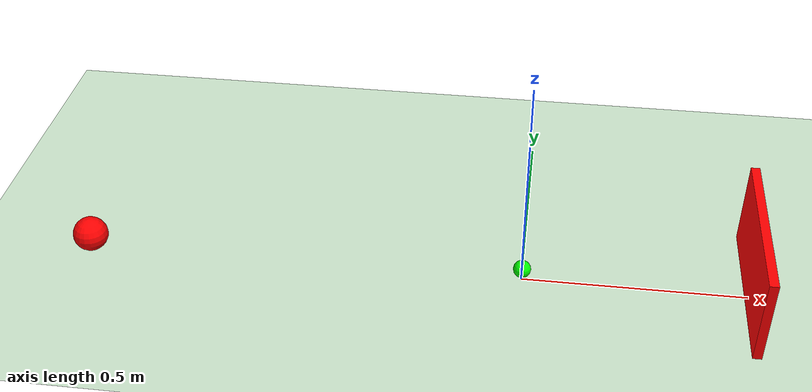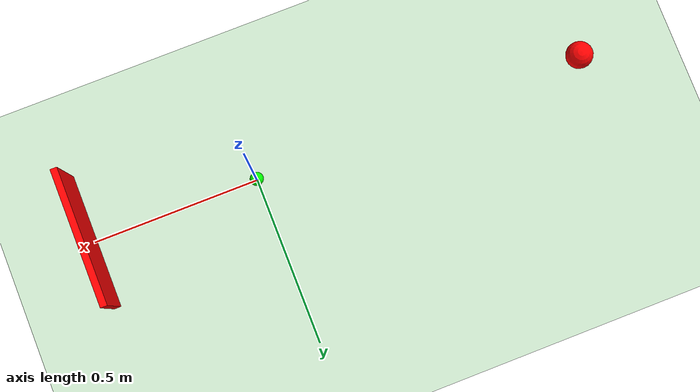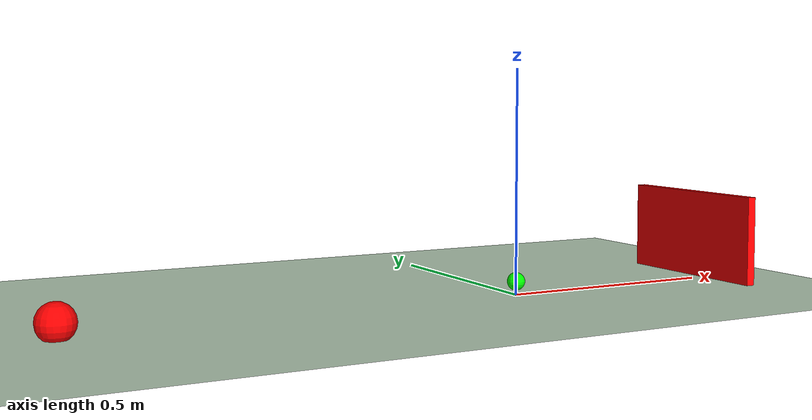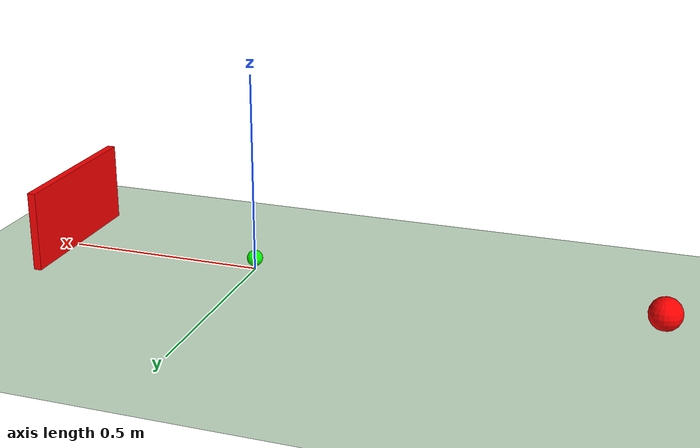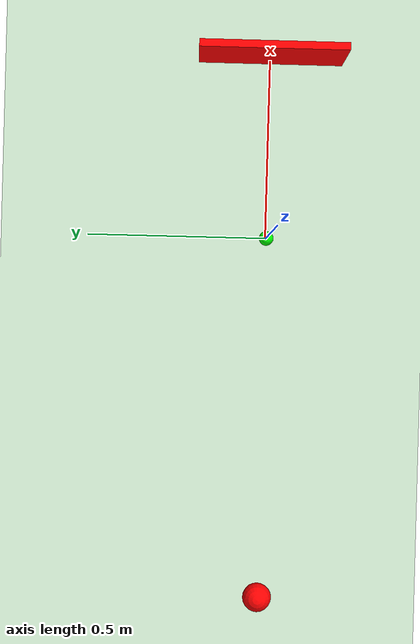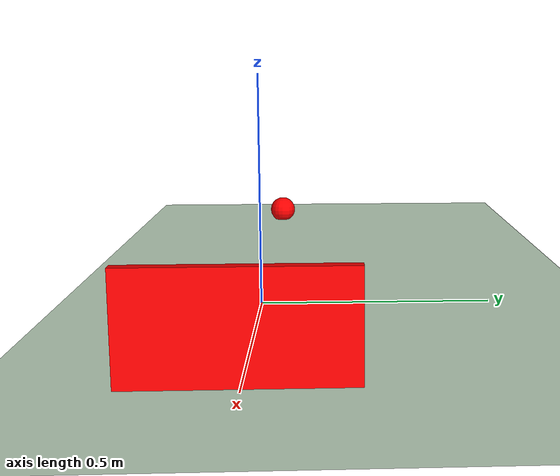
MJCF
<?xml version="1.0" encoding="utf-8"?>
<mujoco model="pusher">
	<compiler angle="radian" coordinate="local" inertiafromgeom="true"/>
	<option gravity="0 0 -9.8" integrator="Euler" timestep="0.01"/>

	<worldbody>
		<camera pos="0 0 4.0" name="topview" euler="0 0 0"/>

		<light cutoff="100" diffuse="1 1 1" dir="0 0 -1.3" directional="true" exponent="1" pos="0 0 1.3" specular="0.1 0.1 0.1"/>
		<geom conaffinity="1" condim="3" name="floor" pos="0 0 0" rgba="0.8 0.9 0.8 1" size="10 10 10" type="plane"/>
		<body name="pusher" pos="0.5 0.0 0.11">
			<geom conaffinity="1" condim="1" contype="1" size="0.01 0.2 0.1" pos="0 0 0" mass="10." name="pusher_geom1" rgba="1 0 0 1" type="box"/>
			<joint axis="1 0 0" damping="0.5" name="wrist_slidex" pos="0.0 0.0 0.0" range="-0.5 0.5" type="slide" limited="true"/>
			<joint axis="0 1 0" damping="0.5" name="wrist_slidey" pos="0.0 0.0 0.0" range="-0.5 0.5" type="slide" limited="true"/>
		</body>

		<body name="object0" pos="0.0 0.0 0.03">
			<joint name="object0:joint" type="free" damping="0.001"></joint>
			<geom conaffinity="1" condim="1" contype="1" name="ball" rgba="0 1 0 1" size="0.02" mass="5." type="sphere"/>
		</body>

		<site name="target" pos="-1.0 0 0.03" size="0.04 0.04 0.04" rgba="1 0 0 1" type="sphere"></site>

	</worldbody>
	<actuator>
		<motor ctrllimited="true" ctrlrange="-1.0 1.0" gear="10" joint="wrist_slidex"/>
	</actuator>
</mujoco>
